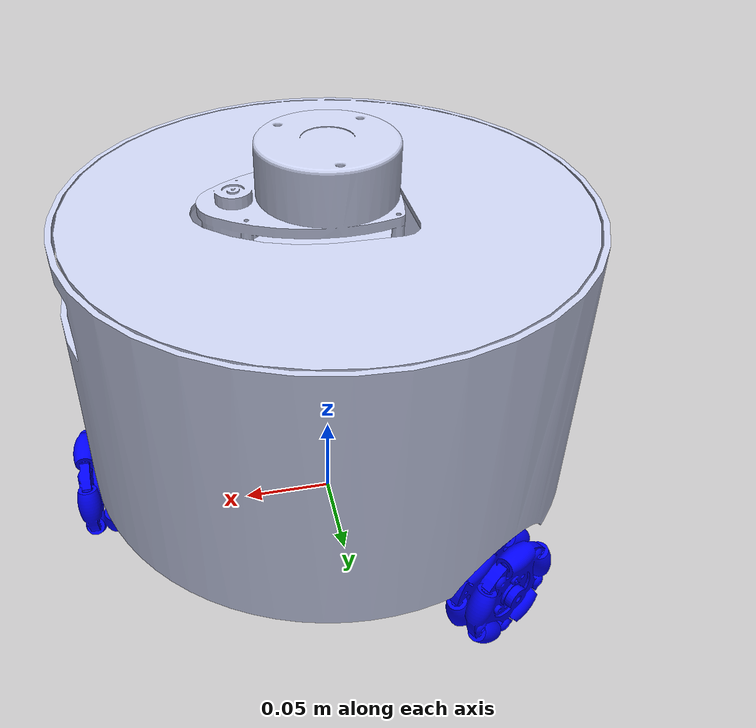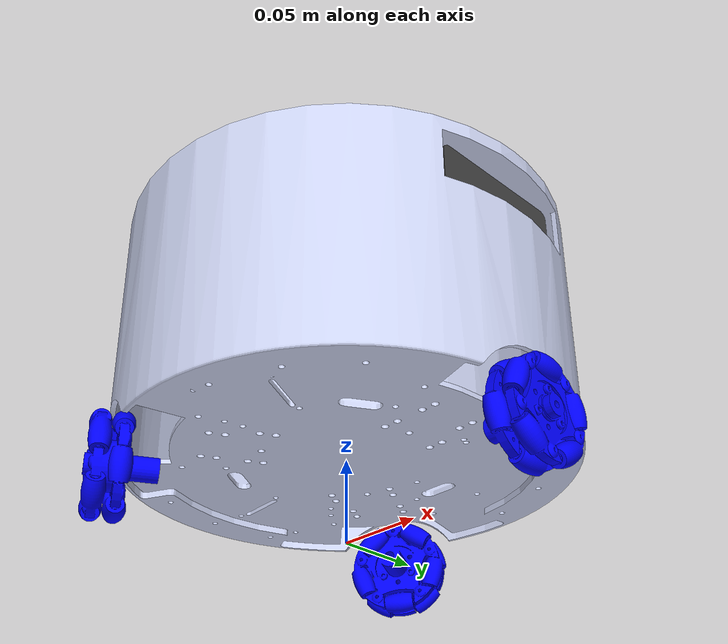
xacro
<?xml version="1.0"?>
<robot xmlns:xacro="http://www.ros.org/wiki/xacro" name="ausrabot">

  <xacro:include filename="$(find ausrabot_description)/urdf/ausrabot/ausrabot_core.xacro" />
  <xacro:include filename="$(find ausrabot_description)/urdf/ausrabot/sensors.xacro" />
  <xacro:include filename="$(find ausrabot_description)/urdf/ausrabot/gazebo.xacro" />

  <xacro:ausrabot_core />

  <link name="robot_footprint" />
  <joint name="dummy_joint" type="fixed">
      <parent link="robot_footprint"/>
      <child link="base_link"/>
      <origin xyz="0 0 0.05" rpy="0 0 0"/>
  </joint>

  <xacro:sensors />
  <xacro:gazebo />

</robot>

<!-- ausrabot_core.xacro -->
<robot xmlns:xacro="http://www.ros.org/wiki/xacro">

  <xacro:macro name="ausrabot_core">

    <link name="base_link">
      <inertial>
        <origin xyz="-0.00177767886836495 -7.08145711406941E-05 0.0345244109350669" rpy="0 0 0" />
        <mass value="0.749591825708612" />
        <inertia
          ixx="0.00560242940522896" ixy="-3.10886247756778E-06" ixz="7.02379711896478E-05"
          iyy="0.00543989398233584" iyz="-2.42126647279533E-17" izz="0.00951025265754031" />
      </inertial>
      <visual>
        <origin xyz="0 0 0" rpy="0 0 0" />
        <geometry>
          <mesh filename="package://ausrabot_description/meshes/base_link.STL" />
        </geometry>
        <material name="">
          <color rgba="0.792 0.819 0.933 1" />
        </material>
      </visual>
      <collision>
        <origin xyz="0 0 0" rpy="0 0 0" />
        <geometry>
          <mesh filename="package://ausrabot_description/meshes/base_link.STL" />
        </geometry>
      </collision>
    </link>

    <link name="wheel_1">
      <inertial>
        <origin xyz="1.0863E-06 -2.2552E-06 0.0075339" rpy="0 0 0" />
        <mass value="0.039266" />
        <inertia
          ixx="3.5298E-06" ixy="1.754E-10" ixz="1.4711E-10"
          iyy="3.5298E-06" iyz="-1.6617E-10" izz="5.3943E-06" />
      </inertial>
      <visual>
        <origin xyz="0 0 0" rpy="0 0 0" />
        <geometry>
          <mesh filename="package://ausrabot_description/meshes/wheel_1.STL" />
        </geometry>
        <material name="">
          <color rgba="0.0 0.0 1.0 1" />
        </material>
      </visual>
      <collision>
        <origin xyz="0 0 0" rpy="0 0 0" />
        <geometry>
          <mesh filename="package://ausrabot_description/meshes/wheel_1.STL" />
        </geometry>
        <surface>
          <friction>
            <ode>
              <mu>1.0</mu>
              <mu2>1.0</mu2>
            </ode>
          </friction>
        </surface>
      </collision>
    </link>

    <joint name="joint_1" type="continuous">
      <origin xyz="0.12368 -0.00013859 -0.019" rpy="1.5708 0 1.5708" />
      <parent link="base_link" />
      <child link="wheel_1" />
      <axis xyz="0 0 1" />
    </joint>

    <link name="wheel_2">
      <inertial>
        <origin xyz="1.0862E-06 -2.255E-06 0.0075339" rpy="0 0 0" />
        <mass value="0.039266" />
        <inertia
          ixx="3.5297E-06" ixy="3.9609E-11" ixz="1.471E-10"
          iyy="3.5297E-06" iyz="-1.6617E-10" izz="5.3942E-06" />
      </inertial>
      <visual>
        <origin xyz="0 0 0" rpy="0 0 0" />
        <geometry>
          <mesh filename="package://ausrabot_description/meshes/wheel_2.STL" />
        </geometry>
        <material name="">
           <color rgba="0.0 0.0 1.0 1" />
        </material>
      </visual>
      <collision>
        <origin xyz="0 0 0" rpy="0 0 0" />
        <geometry>
          <mesh filename="package://ausrabot_description/meshes/wheel_2.STL" />
        </geometry>
        <surface>
          <friction>
            <ode>
              <mu>1.0</mu>
              <mu2>1.0</mu2>
            </ode>
          </friction>
        </surface>
      </collision>
    </link>

    <joint name="joint_2" type="continuous">
      <origin xyz="-0.062025 0.10707 -0.019" rpy="1.5708 0 -2.618" />
      <parent link="base_link" />
      <child link="wheel_2" />
      <axis xyz="0 0 1" />
    </joint>

    <link name="wheel_3">
      <inertial>
        <origin xyz="1.0862E-06 -2.2551E-06 0.0075339" rpy="0 0 0" />
        <mass value="0.039266" />
        <inertia
          ixx="3.5297E-06" ixy="6.0263E-11" ixz="1.471E-10"
          iyy="3.5296E-06" iyz="-1.6618E-10" izz="5.3941E-06" />
      </inertial>
      <visual>
        <origin xyz="0 0 0" rpy="0 0 0" />
        <geometry>
          <mesh filename="package://ausrabot_description/meshes/wheel_3.STL" />
        </geometry>
        <material name="">
           <color rgba="0.0 0.0 1.0 1" />
        </material>
      </visual>
      <collision>
        <origin xyz="0 0 0" rpy="0 0 0" />
        <geometry>
          <mesh filename="package://ausrabot_description/meshes/wheel_3.STL" />
        </geometry>
        <surface>
          <friction>
            <ode>
              <mu>1.0</mu>
              <mu2>1.0</mu2>
            </ode>
          </friction>
        </surface>
      </collision>
    </link>

    <joint name="joint_3" type="continuous">
      <origin xyz="-0.062024 -0.10735 -0.019" rpy="1.5708 0 -0.5236" />
      <parent link="base_link" />
      <child link="wheel_3" />
      <axis xyz="0 0 1" />
    </joint>

  </xacro:macro>
</robot>

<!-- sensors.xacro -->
<robot xmlns:xacro="http://www.ros.org/wiki/xacro">

  <xacro:macro name="sensors">

    <!-- LiDAR Physical -->
    <link name="lidar">
      <inertial>
        <origin xyz="0.0067682 -0.00020713 -0.022521" rpy="0 0 0" />
        <mass value="0.17118" />
        <inertia
          ixx="7.9535E-05" ixy="-1.035E-07" ixz="2.0281E-05"
          iyy="0.00012426" iyz="-3.9476E-07" izz="0.00014191" />
      </inertial>
      <visual>
        <origin xyz="0 0 0" rpy="0 0 0" />
        <geometry>
          <mesh filename="package://ausrabot_description/meshes/lidar.STL" />
        </geometry>
        <material name="">
          <color rgba="0.79216 0.81961 0.93333 1" />
        </material>
      </visual>
      <collision>
        <origin xyz="0 0 0" rpy="0 0 0" />
        <geometry>
          <mesh filename="package://ausrabot_description/meshes/lidar.STL" />
        </geometry>
      </collision>
    </link>

    <joint name="lidar_joint" type="fixed">
      <origin xyz="-0.00012313 -2.5346E-05 0.1797" rpy="0 0 0" />
      <parent link="base_link" />
      <child link="lidar" />
      <axis xyz="0 0 0" />
    </joint>

<link name="oak_camera">
      <inertial>
        <origin xyz="-0.0086 -5.8579E-18 0" rpy="0 0 0" />
        <mass value="0.041718" />
        <inertia
          ixx="3.0322E-05" ixy="-8.0273E-23" ixz="-4.5515E-23"
          iyy="3.5543E-06" iyz="-4.7563E-21" izz="2.8825E-05" />
      </inertial>
      <visual>
        <origin xyz="0 0 0" rpy="0 0 0" />
        <geometry>
          <mesh filename="package://ausrabot_description/meshes/oak_camera.STL" />
        </geometry>
        <material name="">
          <color rgba="0.25098 0.25098 0.25098 1" />
        </material>
      </visual>
      <collision>
        <origin xyz="0 0 0" rpy="0 0 0" />
        <geometry>
          <mesh filename="package://ausrabot_description/meshes/oak_camera.STL" />
        </geometry>
      </collision>
    </link>

    <joint name="oak_joint" type="fixed">
      <origin xyz="0.12008 -0.00013908 0.12046" rpy="0 0 0" />
      <parent link="base_link" />
      <child link="oak_camera" />
      <axis xyz="0 0 0" />
    </joint>

    <!-- Camera Link (standard ROS body frame: X forward, Y left, Z up) -->
    <link name="camera_link"/>
    <joint name="camera_link_joint" type="fixed">
      <parent link="oak_camera"/>
      <child link="camera_link"/>
      <origin xyz="0 0 0" rpy="0 ${pi/2} 0"/>
    </joint>

    <!-- Optical Frame (camera convention: Z forward/depth, X right, Y down) -->
    <!-- CORRECTED: Standard ROS body-to-optical transformation -->
    <link name="camera_link_optical"/>
    <joint name="camera_optical_joint" type="fixed">
      <parent link="camera_link"/>
      <child link="camera_link_optical"/>
      <!-- Transform from oak_camera body frame (X=forward, Y=left, Z=up)
           to optical frame (Z=forward, X=right, Y=down) -->
      <origin xyz="0 0 0" rpy="0 0 -${pi/2}"/>
    </joint>

    <!-- IMU Physical -->
    <link name="imu_link">
      <visual>
        <geometry>
          <box size="0.0001 0.0001 0.0001"/>
        </geometry>
        <material name="">
          <color rgba="1.0 0.0 0.0 1"/> </material>
      </visual>
      <collision>
        <geometry>
          <box size="0.0001 0.0001 0.0001"/>
        </geometry>
      </collision>
      <inertial>
        <mass value="0.01"/>
        <inertia ixx="0.0001" ixy="0" ixz="0" iyy="0.0001" iyz="0" izz="0.0001"/>
      </inertial>
    </link>
    <joint name="imu_joint" type="fixed">
      <parent link="base_link"/>
      <child link="imu_link"/>
      <origin xyz="0 0 0" rpy="0 0 0"/>
    </joint>

  </xacro:macro>
</robot>
